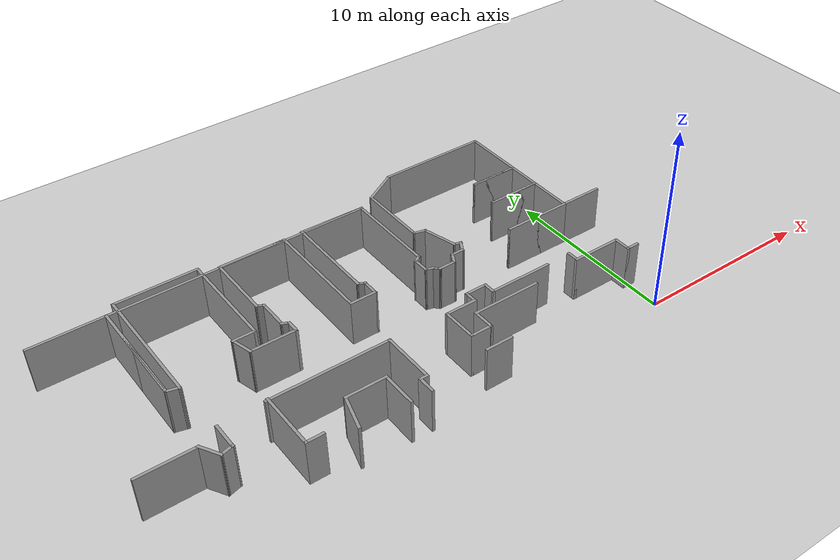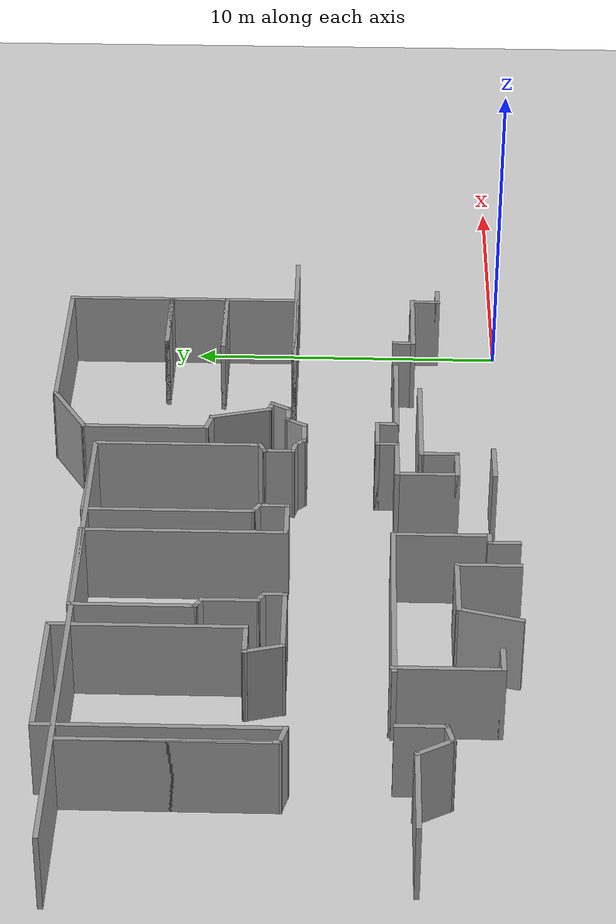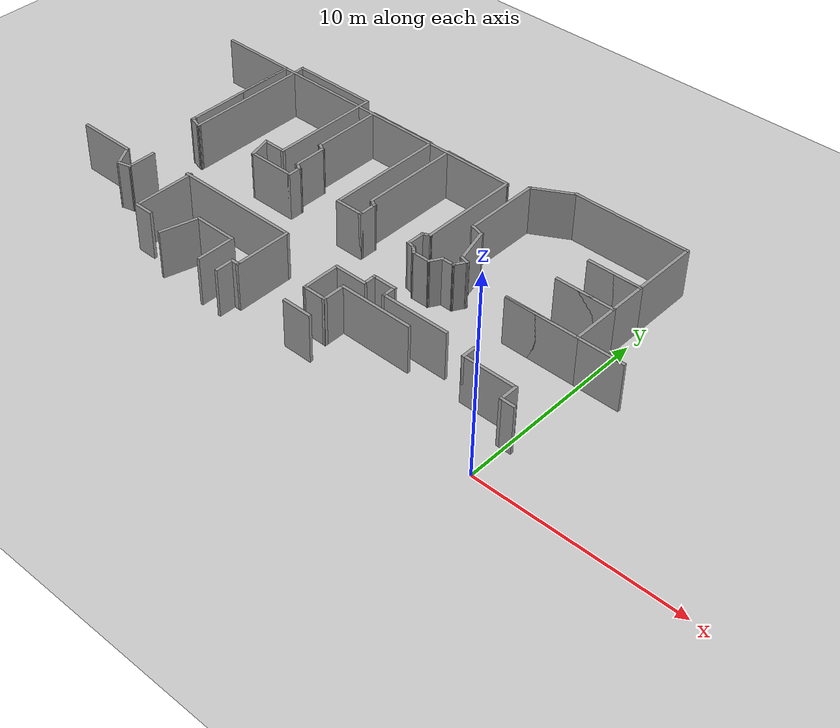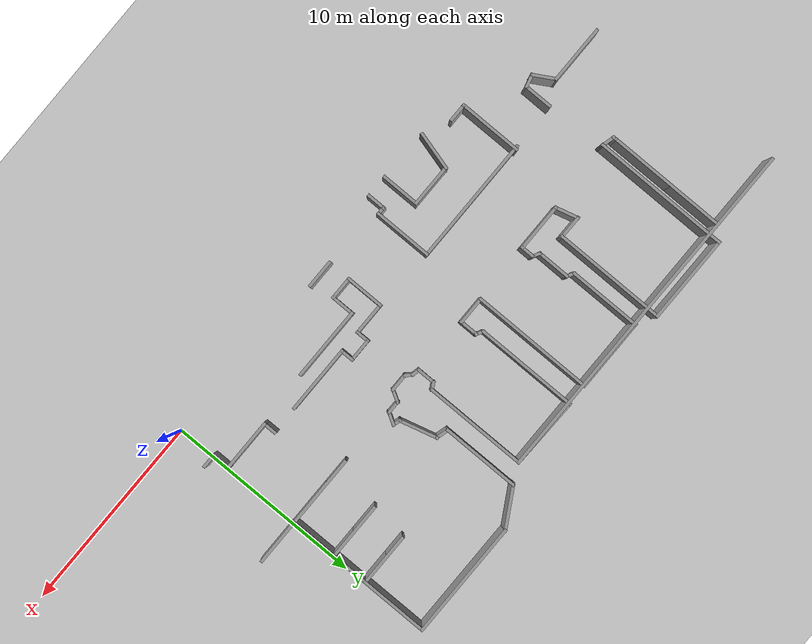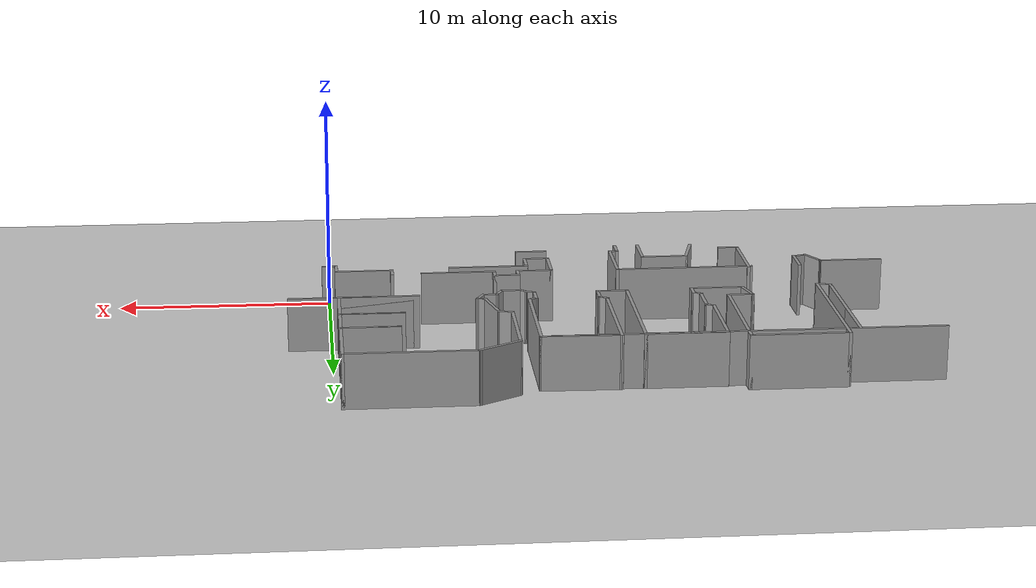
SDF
<sdf version="1.7">
 <world name="default">
  <model name="ground_plane">
   <static>1</static>
   <link name="link">
    <collision name="collision">
     <geometry><plane><normal>0 0 1</normal><size>100 100</size></plane></geometry>
     <surface>
      <contact><collide_bitmask>65535</collide_bitmask></contact>
      <friction><ode><mu>100</mu><mu2>50</mu2></ode></friction>
     </surface>
    </collision>
    <visual name="visual">
     <cast_shadows>0</cast_shadows>
     <geometry><plane><normal>0 0 1</normal><size>100 100</size></plane></geometry>
     <material>
      <script><uri>file://media/materials/scripts/gazebo.material</uri><name>Gazebo/Grey</name></script>
     </material>
    </visual>
   </link>
  </model>
  <model name="Hospital">
   <pose>0.328682 -0.388502 0 0 -0 0</pose>
   <link name="Wall_20">
    <collision name="Wall_20_Collision">
     <geometry><box><size>18 0.15 2.5</size></box></geometry>
     <pose>0 0 1.25 0 -0 0</pose>
    </collision>
    <visual name="Wall_20_Visual">
     <pose>0 0 1.25 0 -0 0</pose>
     <geometry><box><size>18 0.15 2.5</size></box></geometry>
     <material>
      <script><uri>file://media/materials/scripts/gazebo.material</uri><name>Gazebo/Grey</name></script>
      <ambient>1 1 1 1</ambient>
     </material>
     <meta><layer>0</layer></meta>
    </visual>
    <pose>-18.1847 13.131 0 0 -0 0</pose>
   </link>
   <link name="Wall_21">
    <collision name="Wall_21_Collision">
     <geometry><box><size>5.25 0.15 2.5</size></box></geometry>
     <pose>0 0 1.25 0 -0 0</pose>
    </collision>
    <visual name="Wall_21_Visual">
     <pose>0 0 1.25 0 -0 0</pose>
     <geometry><box><size>5.25 0.15 2.5</size></box></geometry>
     <material>
      <script><uri>file://media/materials/scripts/gazebo.material</uri><name>Gazebo/Grey</name></script>
      <ambient>1 1 1 1</ambient>
     </material>
     <meta><layer>0</layer></meta>
    </visual>
    <pose>-9.25971 10.581 0 0 -0 -1.5708</pose>
   </link>
   <link name="Wall_22">
    <collision name="Wall_22_Collision">
     <geometry><box><size>0.5 0.15 2.5</size></box></geometry>
     <pose>0 0 1.25 0 -0 0</pose>
    </collision>
    <visual name="Wall_22_Visual">
     <pose>0 0 1.25 0 -0 0</pose>
     <geometry><box><size>0.5 0.15 2.5</size></box></geometry>
     <material>
      <script><uri>file://media/materials/scripts/gazebo.material</uri><name>Gazebo/Grey</name></script>
      <ambient>1 1 1 1</ambient>
     </material>
     <meta><layer>0</layer></meta>
    </visual>
    <pose>-9.41126 7.94355 0 0 -0 -2.61799</pose>
   </link>
   <link name="Wall_226">
    <collision name="Wall_226_Collision">
     <geometry><box><size>0.75 0.15 2.5</size></box></geometry>
     <pose>0 0 1.25 0 -0 0</pose>
    </collision>
    <visual name="Wall_226_Visual">
     <pose>0 0 1.25 0 -0 0</pose>
     <geometry><box><size>0.75 0.15 2.5</size></box></geometry>
     <material>
      <script><uri>file://media/materials/scripts/gazebo.material</uri><name>Gazebo/Grey</name></script>
      <ambient>1 1 1 1</ambient>
     </material>
     <meta><layer>0</layer></meta>
    </visual>
    <pose>-3.21979 3.50644 0 0 -0 -1.5708</pose>
   </link>
   <link name="Wall_227">
    <collision name="Wall_227_Collision">
     <geometry><box><size>2.75 0.15 2.5</size></box></geometry>
     <pose>0 0 1.25 0 -0 0</pose>
    </collision>
    <visual name="Wall_227_Visual">
     <pose>0 0 1.25 0 -0 0</pose>
     <geometry><box><size>2.75 0.15 2.5</size></box></geometry>
     <material>
      <script><uri>file://media/materials/scripts/gazebo.material</uri><name>Gazebo/Grey</name></script>
      <ambient>1 1 1 1</ambient>
     </material>
     <meta><layer>0</layer></meta>
    </visual>
    <pose>-1.9198 3.20644 0 0 -0 0</pose>
   </link>
   <link name="Wall_228">
    <collision name="Wall_228_Collision">
     <geometry><box><size>1 0.15 2.5</size></box></geometry>
     <pose>0 0 1.25 0 -0 0</pose>
    </collision>
    <visual name="Wall_228_Visual">
     <pose>0 0 1.25 0 -0 0</pose>
     <geometry><box><size>1 0.15 2.5</size></box></geometry>
     <material>
      <script><uri>file://media/materials/scripts/gazebo.material</uri><name>Gazebo/Grey</name></script>
      <ambient>1 1 1 1</ambient>
     </material>
     <meta><layer>0</layer></meta>
    </visual>
    <pose>-0.619796 2.78144 0 0 -0 -1.5708</pose>
   </link>
   <link name="Wall_229">
    <collision name="Wall_229_Collision">
     <geometry><box><size>0.75 0.15 2.5</size></box></geometry>
     <pose>0 0 1.25 0 -0 0</pose>
    </collision>
    <visual name="Wall_229_Visual">
     <pose>0 0 1.25 0 -0 0</pose>
     <geometry><box><size>0.75 0.15 2.5</size></box></geometry>
     <material>
      <script><uri>file://media/materials/scripts/gazebo.material</uri><name>Gazebo/Grey</name></script>
      <ambient>1 1 1 1</ambient>
     </material>
     <meta><layer>0</layer></meta>
    </visual>
    <pose>-0.319796 2.35644 0 0 -0 0</pose>
   </link>
   <link name="Wall_23">
    <collision name="Wall_23_Collision">
     <geometry><box><size>1 0.15 2.5</size></box></geometry>
     <pose>0 0 1.25 0 -0 0</pose>
    </collision>
    <visual name="Wall_23_Visual">
     <pose>0 0 1.25 0 -0 0</pose>
     <geometry><box><size>1 0.15 2.5</size></box></geometry>
     <material>
      <script><uri>file://media/materials/scripts/gazebo.material</uri><name>Gazebo/Grey</name></script>
      <ambient>1 1 1 1</ambient>
     </material>
     <meta><layer>0</layer></meta>
    </visual>
    <pose>-9.56282 7.43105 0 0 -0 -1.5708</pose>
   </link>
   <link name="Wall_24">
    <collision name="Wall_24_Collision">
     <geometry><box><size>0.5 0.15 2.5</size></box></geometry>
     <pose>0 0 1.25 0 -0 0</pose>
    </collision>
    <visual name="Wall_24_Visual">
     <pose>0 0 1.25 0 -0 0</pose>
     <geometry><box><size>0.5 0.15 2.5</size></box></geometry>
     <material>
      <script><uri>file://media/materials/scripts/gazebo.material</uri><name>Gazebo/Grey</name></script>
      <ambient>1 1 1 1</ambient>
     </material>
     <meta><layer>0</layer></meta>
    </visual>
    <pose>-9.39378 6.96075 0 0 -0 -0.261799</pose>
   </link>
   <link name="Wall_243">
    <collision name="Wall_243_Collision">
     <geometry><box><size>3.5 0.15 2.5</size></box></geometry>
     <pose>0 0 1.25 0 -0 0</pose>
    </collision>
    <visual name="Wall_243_Visual">
     <pose>0 0 1.25 0 -0 0</pose>
     <geometry><box><size>3.5 0.15 2.5</size></box></geometry>
     <material>
      <script><uri>file://media/materials/scripts/gazebo.material</uri><name>Gazebo/Grey</name></script>
      <ambient>1 1 1 1</ambient>
     </material>
     <meta><layer>0</layer></meta>
    </visual>
    <pose>-6.31583 3.77644 0 0 -0 3.14159</pose>
   </link>
   <link name="Wall_244">
    <collision name="Wall_244_Collision">
     <geometry><box><size>0.75 0.15 2.5</size></box></geometry>
     <pose>0 0 1.25 0 -0 0</pose>
    </collision>
    <visual name="Wall_244_Visual">
     <pose>0 0 1.25 0 -0 0</pose>
     <geometry><box><size>0.75 0.15 2.5</size></box></geometry>
     <material>
      <script><uri>file://media/materials/scripts/gazebo.material</uri><name>Gazebo/Grey</name></script>
      <ambient>1 1 1 1</ambient>
     </material>
     <meta><layer>0</layer></meta>
    </visual>
    <pose>-7.99083 4.07644 0 0 -0 1.5708</pose>
   </link>
   <link name="Wall_245">
    <collision name="Wall_245_Collision">
     <geometry><box><size>1.25 0.15 2.5</size></box></geometry>
     <pose>0 0 1.25 0 -0 0</pose>
    </collision>
    <visual name="Wall_245_Visual">
     <pose>0 0 1.25 0 -0 0</pose>
     <geometry><box><size>1.25 0.15 2.5</size></box></geometry>
     <material>
      <script><uri>file://media/materials/scripts/gazebo.material</uri><name>Gazebo/Grey</name></script>
      <ambient>1 1 1 1</ambient>
     </material>
     <meta><layer>0</layer></meta>
    </visual>
    <pose>-8.54083 4.37644 0 0 -0 3.14159</pose>
   </link>
   <link name="Wall_246">
    <collision name="Wall_246_Collision">
     <geometry><box><size>0.75 0.15 2.5</size></box></geometry>
     <pose>0 0 1.25 0 -0 0</pose>
    </collision>
    <visual name="Wall_246_Visual">
     <pose>0 0 1.25 0 -0 0</pose>
     <geometry><box><size>0.75 0.15 2.5</size></box></geometry>
     <material>
      <script><uri>file://media/materials/scripts/gazebo.material</uri><name>Gazebo/Grey</name></script>
      <ambient>1 1 1 1</ambient>
     </material>
     <meta><layer>0</layer></meta>
    </visual>
    <pose>-9.09083 4.07644 0 0 -0 -1.5708</pose>
   </link>
   <link name="Wall_247">
    <collision name="Wall_247_Collision">
     <geometry><box><size>1.75 0.15 2.5</size></box></geometry>
     <pose>0 0 1.25 0 -0 0</pose>
    </collision>
    <visual name="Wall_247_Visual">
     <pose>0 0 1.25 0 -0 0</pose>
     <geometry><box><size>1.75 0.15 2.5</size></box></geometry>
     <material>
      <script><uri>file://media/materials/scripts/gazebo.material</uri><name>Gazebo/Grey</name></script>
      <ambient>1 1 1 1</ambient>
     </material>
     <meta><layer>0</layer></meta>
    </visual>
    <pose>-9.89083 3.77644 0 0 -0 3.14159</pose>
   </link>
   <link name="Wall_248">
    <collision name="Wall_248_Collision">
     <geometry><box><size>2 0.15 2.5</size></box></geometry>
     <pose>0 0 1.25 0 -0 0</pose>
    </collision>
    <visual name="Wall_248_Visual">
     <pose>0 0 1.25 0 -0 0</pose>
     <geometry><box><size>2 0.15 2.5</size></box></geometry>
     <material>
      <script><uri>file://media/materials/scripts/gazebo.material</uri><name>Gazebo/Grey</name></script>
      <ambient>1 1 1 1</ambient>
     </material>
     <meta><layer>0</layer></meta>
    </visual>
    <pose>-10.6908 2.85144 0 0 -0 -1.5708</pose>
   </link>
   <link name="Wall_249">
    <collision name="Wall_249_Collision">
     <geometry><box><size>1.25 0.15 2.5</size></box></geometry>
     <pose>0 0 1.25 0 -0 0</pose>
    </collision>
    <visual name="Wall_249_Visual">
     <pose>0 0 1.25 0 -0 0</pose>
     <geometry><box><size>1.25 0.15 2.5</size></box></geometry>
     <material>
      <script><uri>file://media/materials/scripts/gazebo.material</uri><name>Gazebo/Grey</name></script>
      <ambient>1 1 1 1</ambient>
     </material>
     <meta><layer>0</layer></meta>
    </visual>
    <pose>-10.1408 1.92644 0 0 -0 0</pose>
   </link>
   <link name="Wall_25">
    <collision name="Wall_25_Collision">
     <geometry><box><size>0.5 0.15 2.5</size></box></geometry>
     <pose>0 0 1.25 0 -0 0</pose>
    </collision>
    <visual name="Wall_25_Visual">
     <pose>0 0 1.25 0 -0 0</pose>
     <geometry><box><size>0.5 0.15 2.5</size></box></geometry>
     <material>
      <script><uri>file://media/materials/scripts/gazebo.material</uri><name>Gazebo/Grey</name></script>
      <ambient>1 1 1 1</ambient>
     </material>
     <meta><layer>0</layer></meta>
    </visual>
    <pose>-9.101 6.79171 0 0 -0 -0.785398</pose>
   </link>
   <link name="Wall_250">
    <collision name="Wall_250_Collision">
     <geometry><box><size>1.25 0.15 2.5</size></box></geometry>
     <pose>0 0 1.25 0 -0 0</pose>
    </collision>
    <visual name="Wall_250_Visual">
     <pose>0 0 1.25 0 -0 0</pose>
     <geometry><box><size>1.25 0.15 2.5</size></box></geometry>
     <material>
      <script><uri>file://media/materials/scripts/gazebo.material</uri><name>Gazebo/Grey</name></script>
      <ambient>1 1 1 1</ambient>
     </material>
     <meta><layer>0</layer></meta>
    </visual>
    <pose>-9.59083 2.47644 0 0 -0 1.5708</pose>
   </link>
   <link name="Wall_251">
    <collision name="Wall_251_Collision">
     <geometry><box><size>3.75 0.15 2.5</size></box></geometry>
     <pose>0 0 1.25 0 -0 0</pose>
    </collision>
    <visual name="Wall_251_Visual">
     <pose>0 0 1.25 0 -0 0</pose>
     <geometry><box><size>3.75 0.15 2.5</size></box></geometry>
     <material>
      <script><uri>file://media/materials/scripts/gazebo.material</uri><name>Gazebo/Grey</name></script>
      <ambient>1 1 1 1</ambient>
     </material>
     <meta><layer>0</layer></meta>
    </visual>
    <pose>-7.79083 3.02644 0 0 -0 0</pose>
   </link>
   <link name="Wall_26">
    <collision name="Wall_26_Collision">
     <geometry><box><size>1 0.15 2.5</size></box></geometry>
     <pose>0 0 1.25 0 -0 0</pose>
    </collision>
    <visual name="Wall_26_Visual">
     <pose>0 0 1.25 0 -0 0</pose>
     <geometry><box><size>1 0.15 2.5</size></box></geometry>
     <material>
      <script><uri>file://media/materials/scripts/gazebo.material</uri><name>Gazebo/Grey</name></script>
      <ambient>1 1 1 1</ambient>
     </material>
     <meta><layer>0</layer></meta>
    </visual>
    <pose>-8.55226 6.66797 0 0 -0 0</pose>
   </link>
   <link name="Wall_261">
    <collision name="Wall_261_Collision">
     <geometry><box><size>1.5 0.15 2.5</size></box></geometry>
     <pose>0 0 1.25 0 -0 0</pose>
    </collision>
    <visual name="Wall_261_Visual">
     <pose>0 0 1.25 0 -0 0</pose>
     <geometry><box><size>1.5 0.15 2.5</size></box></geometry>
     <material>
      <script><uri>file://media/materials/scripts/gazebo.material</uri><name>Gazebo/Grey</name></script>
      <ambient>1 1 1 1</ambient>
     </material>
     <meta><layer>0</layer></meta>
    </visual>
    <pose>-10.015 0.781732 0 0 -0 3.14159</pose>
   </link>
   <link name="Wall_27">
    <collision name="Wall_27_Collision">
     <geometry><box><size>0.75 0.15 2.5</size></box></geometry>
     <pose>0 0 1.25 0 -0 0</pose>
    </collision>
    <visual name="Wall_27_Visual">
     <pose>0 0 1.25 0 -0 0</pose>
     <geometry><box><size>0.75 0.15 2.5</size></box></geometry>
     <material>
      <script><uri>file://media/materials/scripts/gazebo.material</uri><name>Gazebo/Grey</name></script>
      <ambient>1 1 1 1</ambient>
     </material>
     <meta><layer>0</layer></meta>
    </visual>
    <pose>-7.97726 6.92778 0 0 -0 1.0472</pose>
   </link>
   <link name="Wall_28">
    <collision name="Wall_28_Collision">
     <geometry><box><size>0.75 0.15 2.5</size></box></geometry>
     <pose>0 0 1.25 0 -0 0</pose>
    </collision>
    <visual name="Wall_28_Visual">
     <pose>0 0 1.25 0 -0 0</pose>
     <geometry><box><size>0.75 0.15 2.5</size></box></geometry>
     <material>
      <script><uri>file://media/materials/scripts/gazebo.material</uri><name>Gazebo/Grey</name></script>
      <ambient>1 1 1 1</ambient>
     </material>
     <meta><layer>0</layer></meta>
    </visual>
    <pose>-7.52726 7.18759 0 0 -0 0</pose>
   </link>
   <link name="Wall_29">
    <collision name="Wall_29_Collision">
     <geometry><box><size>0.75 0.15 2.5</size></box></geometry>
     <pose>0 0 1.25 0 -0 0</pose>
    </collision>
    <visual name="Wall_29_Visual">
     <pose>0 0 1.25 0 -0 0</pose>
     <geometry><box><size>0.75 0.15 2.5</size></box></geometry>
     <material>
      <script><uri>file://media/materials/scripts/gazebo.material</uri><name>Gazebo/Grey</name></script>
      <ambient>1 1 1 1</ambient>
     </material>
     <meta><layer>0</layer></meta>
    </visual>
    <pose>-7.07726 7.44739 0 0 -0 1.0472</pose>
   </link>
   <link name="Wall_30">
    <collision name="Wall_30_Collision">
     <geometry><box><size>0.5 0.15 2.5</size></box></geometry>
     <pose>0 0 1.25 0 -0 0</pose>
    </collision>
    <visual name="Wall_30_Visual">
     <pose>0 0 1.25 0 -0 0</pose>
     <geometry><box><size>0.5 0.15 2.5</size></box></geometry>
     <material>
      <script><uri>file://media/materials/scripts/gazebo.material</uri><name>Gazebo/Grey</name></script>
      <ambient>1 1 1 1</ambient>
     </material>
     <meta><layer>0</layer></meta>
    </visual>
    <pose>-7.09629 7.75249 0 0 -0 2.87979</pose>
   </link>
   <link name="Wall_31">
    <collision name="Wall_31_Collision">
     <geometry><box><size>2 0.15 2.5</size></box></geometry>
     <pose>0 0 1.25 0 -0 0</pose>
    </collision>
    <visual name="Wall_31_Visual">
     <pose>0 0 1.25 0 -0 0</pose>
     <geometry><box><size>2 0.15 2.5</size></box></geometry>
     <material>
      <script><uri>file://media/materials/scripts/gazebo.material</uri><name>Gazebo/Grey</name></script>
      <ambient>1 1 1 1</ambient>
     </material>
     <meta><layer>0</layer></meta>
    </visual>
    <pose>-7.50474 8.69127 0 0 -0 1.8326</pose>
   </link>
   <link name="Wall_315">
    <collision name="Wall_315_Collision">
     <geometry><box><size>3 0.15 2.5</size></box></geometry>
     <pose>0 0 1.25 0 -0 0</pose>
    </collision>
    <visual name="Wall_315_Visual">
     <pose>0 0 1.25 0 -0 0</pose>
     <geometry><box><size>3 0.15 2.5</size></box></geometry>
     <material>
      <script><uri>file://media/materials/scripts/gazebo.material</uri><name>Gazebo/Grey</name></script>
      <ambient>1 1 1 1</ambient>
     </material>
     <meta><layer>0</layer></meta>
    </visual>
    <pose>-25.0507 3.31803 0 0 -0 0</pose>
   </link>
   <link name="Wall_316">
    <collision name="Wall_316_Collision">
     <geometry><box><size>1.25 0.15 2.5</size></box></geometry>
     <pose>0 0 1.25 0 -0 0</pose>
    </collision>
    <visual name="Wall_316_Visual">
     <pose>0 0 1.25 0 -0 0</pose>
     <geometry><box><size>1.25 0.15 2.5</size></box></geometry>
     <material>
      <script><uri>file://media/materials/scripts/gazebo.material</uri><name>Gazebo/Grey</name></script>
      <ambient>1 1 1 1</ambient>
     </material>
     <meta><layer>0</layer></meta>
    </visual>
    <pose>-23.3507 2.84172 0 0 -0 -1.0472</pose>
   </link>
   <link name="Wall_317">
    <collision name="Wall_317_Collision">
     <geometry><box><size>0.75 0.15 2.5</size></box></geometry>
     <pose>0 0 1.25 0 -0 0</pose>
    </collision>
    <visual name="Wall_317_Visual">
     <pose>0 0 1.25 0 -0 0</pose>
     <geometry><box><size>0.75 0.15 2.5</size></box></geometry>
     <material>
      <script><uri>file://media/materials/scripts/gazebo.material</uri><name>Gazebo/Grey</name></script>
      <ambient>1 1 1 1</ambient>
     </material>
     <meta><layer>0</layer></meta>
    </visual>
    <pose>-22.7859 2.44305 0 0 -0 0.261799</pose>
   </link>
   <link name="Wall_318">
    <collision name="Wall_318_Collision">
     <geometry><box><size>1.5 0.15 2.5</size></box></geometry>
     <pose>0 0 1.25 0 -0 0</pose>
    </collision>
    <visual name="Wall_318_Visual">
     <pose>0 0 1.25 0 -0 0</pose>
     <geometry><box><size>1.5 0.15 2.5</size></box></geometry>
     <material>
      <script><uri>file://media/materials/scripts/gazebo.material</uri><name>Gazebo/Grey</name></script>
      <ambient>1 1 1 1</ambient>
     </material>
     <meta><layer>0</layer></meta>
    </visual>
    <pose>-22.4961 3.19569 0 0 -0 1.5708</pose>
   </link>
   <link name="Wall_32">
    <collision name="Wall_32_Collision">
     <geometry><box><size>0.75 0.15 2.5</size></box></geometry>
     <pose>0 0 1.25 0 -0 0</pose>
    </collision>
    <visual name="Wall_32_Visual">
     <pose>0 0 1.25 0 -0 0</pose>
     <geometry><box><size>0.75 0.15 2.5</size></box></geometry>
     <material>
      <script><uri>file://media/materials/scripts/gazebo.material</uri><name>Gazebo/Grey</name></script>
      <ambient>1 1 1 1</ambient>
     </material>
     <meta><layer>0</layer></meta>
    </visual>
    <pose>-8.03392 9.6624 0 0 -0 2.87979</pose>
   </link>
   <link name="Wall_33">
    <collision name="Wall_33_Collision">
     <geometry><box><size>4 0.15 2.5</size></box></geometry>
     <pose>0 0 1.25 0 -0 0</pose>
    </collision>
    <visual name="Wall_33_Visual">
     <pose>0 0 1.25 0 -0 0</pose>
     <geometry><box><size>4 0.15 2.5</size></box></geometry>
     <material>
      <script><uri>file://media/materials/scripts/gazebo.material</uri><name>Gazebo/Grey</name></script>
      <ambient>1 1 1 1</ambient>
     </material>
     <meta><layer>0</layer></meta>
    </visual>
    <pose>-8.3237 11.665 0 0 -0 1.5708</pose>
   </link>
   <link name="Wall_34">
    <collision name="Wall_34_Collision">
     <geometry><box><size>2.25 0.15 2.5</size></box></geometry>
     <pose>0 0 1.25 0 -0 0</pose>
    </collision>
    <visual name="Wall_34_Visual">
     <pose>0 0 1.25 0 -0 0</pose>
     <geometry><box><size>2.25 0.15 2.5</size></box></geometry>
     <material>
      <script><uri>file://media/materials/scripts/gazebo.material</uri><name>Gazebo/Grey</name></script>
      <ambient>1 1 1 1</ambient>
     </material>
     <meta><layer>0</layer></meta>
    </visual>
    <pose>-7.41437 14.115 0 0 -0 0.523599</pose>
   </link>
   <link name="Wall_35">
    <collision name="Wall_35_Collision">
     <geometry><box><size>6 0.15 2.5</size></box></geometry>
     <pose>0 0 1.25 0 -0 0</pose>
    </collision>
    <visual name="Wall_35_Visual">
     <pose>0 0 1.25 0 -0 0</pose>
     <geometry><box><size>6 0.15 2.5</size></box></geometry>
     <material>
      <script><uri>file://media/materials/scripts/gazebo.material</uri><name>Gazebo/Grey</name></script>
      <ambient>1 1 1 1</ambient>
     </material>
     <meta><layer>0</layer></meta>
    </visual>
    <pose>-3.58005 14.64 0 0 -0 0</pose>
   </link>
   <link name="Wall_36">
    <collision name="Wall_36_Collision">
     <geometry><box><size>3.5 0.15 2.5</size></box></geometry>
     <pose>0 0 1.25 0 -0 0</pose>
    </collision>
    <visual name="Wall_36_Visual">
     <pose>0 0 1.25 0 -0 0</pose>
     <geometry><box><size>3.5 0.15 2.5</size></box></geometry>
     <material>
      <script><uri>file://media/materials/scripts/gazebo.material</uri><name>Gazebo/Grey</name></script>
      <ambient>1 1 1 1</ambient>
     </material>
     <meta><layer>0</layer></meta>
    </visual>
    <pose>-0.655048 12.965 0 0 -0 -1.5708</pose>
   </link>
   <link name="Wall_37">
    <collision name="Wall_37_Collision">
     <geometry><box><size>2.75 0.15 2.5</size></box></geometry>
     <pose>0 0 1.25 0 -0 0</pose>
    </collision>
    <visual name="Wall_37_Visual">
     <pose>0 0 1.25 0 -0 0</pose>
     <geometry><box><size>2.75 0.15 2.5</size></box></geometry>
     <material>
      <script><uri>file://media/materials/scripts/gazebo.material</uri><name>Gazebo/Grey</name></script>
      <ambient>1 1 1 1</ambient>
     </material>
     <meta><layer>0</layer></meta>
    </visual>
    <pose>-1.95505 11.29 0 0 -0 3.14159</pose>
   </link>
   <link name="Wall_374">
    <collision name="Wall_374_Collision">
     <geometry><box><size>6 0.15 2.5</size></box></geometry>
     <pose>0 0 1.25 0 -0 0</pose>
    </collision>
    <visual name="Wall_374_Visual">
     <pose>0 0 1.25 0 -0 0</pose>
     <geometry><box><size>6 0.15 2.5</size></box></geometry>
     <material>
      <script><uri>file://media/materials/scripts/gazebo.material</uri><name>Gazebo/Grey</name></script>
      <ambient>1 1 1 1</ambient>
     </material>
     <meta><layer>0</layer></meta>
    </visual>
    <pose>-23.2715 10.1794 0 0 -0 1.5708</pose>
   </link>
   <link name="Wall_375">
    <collision name="Wall_375_Collision">
     <geometry><box><size>6.25 0.15 2.5</size></box></geometry>
     <pose>0 0 1.25 0 -0 0</pose>
    </collision>
    <visual name="Wall_375_Visual">
     <pose>0 0 1.25 0 -0 0</pose>
     <geometry><box><size>6.25 0.15 2.5</size></box></geometry>
     <material>
      <script><uri>file://media/materials/scripts/gazebo.material</uri><name>Gazebo/Grey</name></script>
      <ambient>1 1 1 1</ambient>
     </material>
     <meta><layer>0</layer></meta>
    </visual>
    <pose>-23.2715 10.0544 0 0 -0 -1.5708</pose>
   </link>
   <link name="Wall_376">
    <collision name="Wall_376_Collision">
     <geometry><box><size>0.75 0.15 2.5</size></box></geometry>
     <pose>0 0 1.25 0 -0 0</pose>
    </collision>
    <visual name="Wall_376_Visual">
     <pose>0 0 1.25 0 -0 0</pose>
     <geometry><box><size>0.75 0.15 2.5</size></box></geometry>
     <material>
      <script><uri>file://media/materials/scripts/gazebo.material</uri><name>Gazebo/Grey</name></script>
      <ambient>1 1 1 1</ambient>
     </material>
     <meta><layer>0</layer></meta>
    </visual>
    <pose>-22.9818 6.92675 0 0 -0 -0.261799</pose>
   </link>
   <link name="Wall_377">
    <collision name="Wall_377_Collision">
     <geometry><box><size>7 0.15 2.5</size></box></geometry>
     <pose>0 0 1.25 0 -0 0</pose>
    </collision>
    <visual name="Wall_377_Visual">
     <pose>0 0 1.25 0 -0 0</pose>
     <geometry><box><size>7 0.15 2.5</size></box></geometry>
     <material>
      <script><uri>file://media/materials/scripts/gazebo.material</uri><name>Gazebo/Grey</name></script>
      <ambient>1 1 1 1</ambient>
     </material>
     <meta><layer>0</layer></meta>
    </visual>
    <pose>-22.692 10.2741 0 0 -0 1.5708</pose>
   </link>
   <link name="Wall_378">
    <collision name="Wall_378_Collision">
     <geometry><box><size>4.5 0.15 2.5</size></box></geometry>
     <pose>0 0 1.25 0 -0 0</pose>
    </collision>
    <visual name="Wall_378_Visual">
     <pose>0 0 1.25 0 -0 0</pose>
     <geometry><box><size>4.5 0.15 2.5</size></box></geometry>
     <material>
      <script><uri>file://media/materials/scripts/gazebo.material</uri><name>Gazebo/Grey</name></script>
      <ambient>1 1 1 1</ambient>
     </material>
     <meta><layer>0</layer></meta>
    </visual>
    <pose>-20.517 13.6991 0 0 -0 0</pose>
   </link>
   <link name="Wall_379">
    <collision name="Wall_379_Collision">
     <geometry><box><size>5.75 0.15 2.5</size></box></geometry>
     <pose>0 0 1.25 0 -0 0</pose>
    </collision>
    <visual name="Wall_379_Visual">
     <pose>0 0 1.25 0 -0 0</pose>
     <geometry><box><size>5.75 0.15 2.5</size></box></geometry>
     <material>
      <script><uri>file://media/materials/scripts/gazebo.material</uri><name>Gazebo/Grey</name></script>
      <ambient>1 1 1 1</ambient>
     </material>
     <meta><layer>0</layer></meta>
    </visual>
    <pose>-18.342 10.8991 0 0 -0 -1.5708</pose>
   </link>
   <link name="Wall_38">
    <collision name="Wall_38_Collision">
     <geometry><box><size>2.75 0.15 2.5</size></box></geometry>
     <pose>0 0 1.25 0 -0 0</pose>
    </collision>
    <visual name="Wall_38_Visual">
     <pose>0 0 1.25 0 -0 0</pose>
     <geometry><box><size>2.75 0.15 2.5</size></box></geometry>
     <material>
      <script><uri>file://media/materials/scripts/gazebo.material</uri><name>Gazebo/Grey</name></script>
      <ambient>1 1 1 1</ambient>
     </material>
     <meta><layer>0</layer></meta>
    </visual>
    <pose>-1.95505 11.29 0 0 -0 0</pose>
   </link>
   <link name="Wall_380">
    <collision name="Wall_380_Collision">
     <geometry><box><size>1.25 0.15 2.5</size></box></geometry>
     <pose>0 0 1.25 0 -0 0</pose>
    </collision>
    <visual name="Wall_380_Visual">
     <pose>0 0 1.25 0 -0 0</pose>
     <geometry><box><size>1.25 0.15 2.5</size></box></geometry>
     <material>
      <script><uri>file://media/materials/scripts/gazebo.material</uri><name>Gazebo/Grey</name></script>
      <ambient>1 1 1 1</ambient>
     </material>
     <meta><layer>0</layer></meta>
    </visual>
    <pose>-18.892 8.09911 0 0 -0 3.14159</pose>
   </link>
   <link name="Wall_381">
    <collision name="Wall_381_Collision">
     <geometry><box><size>1.25 0.15 2.5</size></box></geometry>
     <pose>0 0 1.25 0 -0 0</pose>
    </collision>
    <visual name="Wall_381_Visual">
     <pose>0 0 1.25 0 -0 0</pose>
     <geometry><box><size>1.25 0.15 2.5</size></box></geometry>
     <material>
      <script><uri>file://media/materials/scripts/gazebo.material</uri><name>Gazebo/Grey</name></script>
      <ambient>1 1 1 1</ambient>
     </material>
     <meta><layer>0</layer></meta>
    </visual>
    <pose>-19.2996 7.56785 0 0 -0 -1.309</pose>
   </link>
   <link name="Wall_382">
    <collision name="Wall_382_Collision">
     <geometry><box><size>2.5 0.15 2.5</size></box></geometry>
     <pose>0 0 1.25 0 -0 0</pose>
    </collision>
    <visual name="Wall_382_Visual">
     <pose>0 0 1.25 0 -0 0</pose>
     <geometry><box><size>2.5 0.15 2.5</size></box></geometry>
     <material>
      <script><uri>file://media/materials/scripts/gazebo.material</uri><name>Gazebo/Grey</name></script>
      <ambient>1 1 1 1</ambient>
     </material>
     <meta><layer>0</layer></meta>
    </visual>
    <pose>-17.9823 7.03659 0 0 -0 0</pose>
   </link>
   <link name="Wall_383">
    <collision name="Wall_383_Collision">
     <geometry><box><size>0.75 0.15 2.5</size></box></geometry>
     <pose>0 0 1.25 0 -0 0</pose>
    </collision>
    <visual name="Wall_383_Visual">
     <pose>0 0 1.25 0 -0 0</pose>
     <geometry><box><size>0.75 0.15 2.5</size></box></geometry>
     <material>
      <script><uri>file://media/materials/scripts/gazebo.material</uri><name>Gazebo/Grey</name></script>
      <ambient>1 1 1 1</ambient>
     </material>
     <meta><layer>0</layer></meta>
    </visual>
    <pose>-16.8073 7.33659 0 0 -0 1.5708</pose>
   </link>
   <link name="Wall_384">
    <collision name="Wall_384_Collision">
     <geometry><box><size>0.5 0.15 2.5</size></box></geometry>
     <pose>0 0 1.25 0 -0 0</pose>
    </collision>
    <visual name="Wall_384_Visual">
     <pose>0 0 1.25 0 -0 0</pose>
     <geometry><box><size>0.5 0.15 2.5</size></box></geometry>
     <material>
      <script><uri>file://media/materials/scripts/gazebo.material</uri><name>Gazebo/Grey</name></script>
      <ambient>1 1 1 1</ambient>
     </material>
     <meta><layer>0</layer></meta>
    </visual>
    <pose>-16.9588 7.72409 0 0 -0 2.61799</pose>
   </link>
   <link name="Wall_385">
    <collision name="Wall_385_Collision">
     <geometry><box><size>1.75 0.15 2.5</size></box></geometry>
     <pose>0 0 1.25 0 -0 0</pose>
    </collision>
    <visual name="Wall_385_Visual">
     <pose>0 0 1.25 0 -0 0</pose>
     <geometry><box><size>1.75 0.15 2.5</size></box></geometry>
     <material>
      <script><uri>file://media/materials/scripts/gazebo.material</uri><name>Gazebo/Grey</name></script>
      <ambient>1 1 1 1</ambient>
     </material>
     <meta><layer>0</layer></meta>
    </visual>
    <pose>-17.1104 8.61159 0 0 -0 1.5708</pose>
   </link>
   <link name="Wall_386">
    <collision name="Wall_386_Collision">
     <geometry><box><size>0.5 0.15 2.5</size></box></geometry>
     <pose>0 0 1.25 0 -0 0</pose>
    </collision>
    <visual name="Wall_386_Visual">
     <pose>0 0 1.25 0 -0 0</pose>
     <geometry><box><size>0.5 0.15 2.5</size></box></geometry>
     <material>
      <script><uri>file://media/materials/scripts/gazebo.material</uri><name>Gazebo/Grey</name></script>
      <ambient>1 1 1 1</ambient>
     </material>
     <meta><layer>0</layer></meta>
    </visual>
    <pose>-17.2619 9.49909 0 0 -0 2.61799</pose>
   </link>
   <link name="Wall_387">
    <collision name="Wall_387_Collision">
     <geometry><box><size>3.75 0.15 2.5</size></box></geometry>
     <pose>0 0 1.25 0 -0 0</pose>
    </collision>
    <visual name="Wall_387_Visual">
     <pose>0 0 1.25 0 -0 0</pose>
     <geometry><box><size>3.75 0.15 2.5</size></box></geometry>
     <material>
      <script><uri>file://media/materials/scripts/gazebo.material</uri><name>Gazebo/Grey</name></script>
      <ambient>1 1 1 1</ambient>
     </material>
     <meta><layer>0</layer></meta>
    </visual>
    <pose>-17.4135 11.3866 0 0 -0 1.5708</pose>
   </link>
   <link name="Wall_388">
    <collision name="Wall_388_Collision">
     <geometry><box><size>3.75 0.15 2.5</size></box></geometry>
     <pose>0 0 1.25 0 -0 0</pose>
    </collision>
    <visual name="Wall_388_Visual">
     <pose>0 0 1.25 0 -0 0</pose>
     <geometry><box><size>3.75 0.15 2.5</size></box></geometry>
     <material>
      <script><uri>file://media/materials/scripts/gazebo.material</uri><name>Gazebo/Grey</name></script>
      <ambient>1 1 1 1</ambient>
     </material>
     <meta><layer>0</layer></meta>
    </visual>
    <pose>-15.6135 13.1866 0 0 -0 0</pose>
   </link>
   <link name="Wall_389">
    <collision name="Wall_389_Collision">
     <geometry><box><size>6.25 0.15 2.5</size></box></geometry>
     <pose>0 0 1.25 0 -0 0</pose>
    </collision>
    <visual name="Wall_389_Visual">
     <pose>0 0 1.25 0 -0 0</pose>
     <geometry><box><size>6.25 0.15 2.5</size></box></geometry>
     <material>
      <script><uri>file://media/materials/scripts/gazebo.material</uri><name>Gazebo/Grey</name></script>
      <ambient>1 1 1 1</ambient>
     </material>
     <meta><layer>0</layer></meta>
    </visual>
    <pose>-13.8135 10.1366 0 0 -0 -1.5708</pose>
   </link>
   <link name="Wall_39">
    <collision name="Wall_39_Collision">
     <geometry><box><size>2 0.15 2.5</size></box></geometry>
     <pose>0 0 1.25 0 -0 0</pose>
    </collision>
    <visual name="Wall_39_Visual">
     <pose>0 0 1.25 0 -0 0</pose>
     <geometry><box><size>2 0.15 2.5</size></box></geometry>
     <material>
      <script><uri>file://media/materials/scripts/gazebo.material</uri><name>Gazebo/Grey</name></script>
      <ambient>1 1 1 1</ambient>
     </material>
     <meta><layer>0</layer></meta>
    </visual>
    <pose>-0.655048 10.365 0 0 -0 -1.5708</pose>
   </link>
   <link name="Wall_390">
    <collision name="Wall_390_Collision">
     <geometry><box><size>1.5 0.15 2.5</size></box></geometry>
     <pose>0 0 1.25 0 -0 0</pose>
    </collision>
    <visual name="Wall_390_Visual">
     <pose>0 0 1.25 0 -0 0</pose>
     <geometry><box><size>1.5 0.15 2.5</size></box></geometry>
     <material>
      <script><uri>file://media/materials/scripts/gazebo.material</uri><name>Gazebo/Grey</name></script>
      <ambient>1 1 1 1</ambient>
     </material>
     <meta><layer>0</layer></meta>
    </visual>
    <pose>-13.1385 7.08659 0 0 -0 0</pose>
   </link>
   <link name="Wall_391">
    <collision name="Wall_391_Collision">
     <geometry><box><size>1 0.15 2.5</size></box></geometry>
     <pose>0 0 1.25 0 -0 0</pose>
    </collision>
    <visual name="Wall_391_Visual">
     <pose>0 0 1.25 0 -0 0</pose>
     <geometry><box><size>1 0.15 2.5</size></box></geometry>
     <material>
      <script><uri>file://media/materials/scripts/gazebo.material</uri><name>Gazebo/Grey</name></script>
      <ambient>1 1 1 1</ambient>
     </material>
     <meta><layer>0</layer></meta>
    </visual>
    <pose>-12.4635 7.51159 0 0 -0 1.5708</pose>
   </link>
   <link name="Wall_392">
    <collision name="Wall_392_Collision">
     <geometry><box><size>0.5 0.15 2.5</size></box></geometry>
     <pose>0 0 1.25 0 -0 0</pose>
    </collision>
    <visual name="Wall_392_Visual">
     <pose>0 0 1.25 0 -0 0</pose>
     <geometry><box><size>0.5 0.15 2.5</size></box></geometry>
     <material>
      <script><uri>file://media/materials/scripts/gazebo.material</uri><name>Gazebo/Grey</name></script>
      <ambient>1 1 1 1</ambient>
     </material>
     <meta><layer>0</layer></meta>
    </visual>
    <pose>-12.6151 8.02409 0 0 -0 2.61799</pose>
   </link>
   <link name="Wall_393">
    <collision name="Wall_393_Collision">
     <geometry><box><size>5.25 0.15 2.5</size></box></geometry>
     <pose>0 0 1.25 0 -0 0</pose>
    </collision>
    <visual name="Wall_393_Visual">
     <pose>0 0 1.25 0 -0 0</pose>
     <geometry><box><size>5.25 0.15 2.5</size></box></geometry>
     <material>
      <script><uri>file://media/materials/scripts/gazebo.material</uri><name>Gazebo/Grey</name></script>
      <ambient>1 1 1 1</ambient>
     </material>
     <meta><layer>0</layer></meta>
    </visual>
    <pose>-12.7666 10.6616 0 0 -0 1.5708</pose>
   </link>
   <link name="Wall_394">
    <collision name="Wall_394_Collision">
     <geometry><box><size>3.65782 0.15 2.5</size></box></geometry>
     <pose>0 0 1.25 0 -0 0</pose>
    </collision>
    <visual name="Wall_394_Visual">
     <pose>0 0 1.25 0 -0 0</pose>
     <geometry><box><size>3.65782 0.15 2.5</size></box></geometry>
     <material>
      <script><uri>file://media/materials/scripts/gazebo.material</uri><name>Gazebo/Grey</name></script>
      <ambient>1 1 1 1</ambient>
     </material>
     <meta><layer>0</layer></meta>
    </visual>
    <pose>-11.0132 13.1713 0 0 -0 -0.022963</pose>
   </link>
   <link name="Wall_396">
    <collision name="Wall_396_Collision">
     <geometry><box><size>3.25 0.15 2.5</size></box></geometry>
     <pose>0 0 1.25 0 -0 0</pose>
    </collision>
    <visual name="Wall_396_Visual">
     <pose>0 0 1.25 0 -0 0</pose>
     <geometry><box><size>3.25 0.15 2.5</size></box></geometry>
     <material>
      <script><uri>file://media/materials/scripts/gazebo.material</uri><name>Gazebo/Grey</name></script>
      <ambient>1 1 1 1</ambient>
     </material>
     <meta><layer>0</layer></meta>
    </visual>
    <pose>-20.0351 2.4275 0 0 -0 -1.5708</pose>
   </link>
   <link name="Wall_397">
    <collision name="Wall_397_Collision">
     <geometry><box><size>1 0.15 2.5</size></box></geometry>
     <pose>0 0 1.25 0 -0 0</pose>
    </collision>
    <visual name="Wall_397_Visual">
     <pose>0 0 1.25 0 -0 0</pose>
     <geometry><box><size>1 0.15 2.5</size></box></geometry>
     <material>
      <script><uri>file://media/materials/scripts/gazebo.material</uri><name>Gazebo/Grey</name></script>
      <ambient>1 1 1 1</ambient>
     </material>
     <meta><layer>0</layer></meta>
    </visual>
    <pose>-19.6101 0.877496 0 0 -0 0</pose>
   </link>
   <link name="Wall_40">
    <collision name="Wall_40_Collision">
     <geometry><box><size>3 0.15 2.5</size></box></geometry>
     <pose>0 0 1.25 0 -0 0</pose>
    </collision>
    <visual name="Wall_40_Visual">
     <pose>0 0 1.25 0 -0 0</pose>
     <geometry><box><size>3 0.15 2.5</size></box></geometry>
     <material>
      <script><uri>file://media/materials/scripts/gazebo.material</uri><name>Gazebo/Grey</name></script>
      <ambient>1 1 1 1</ambient>
     </material>
     <meta><layer>0</layer></meta>
    </visual>
    <pose>-2.08005 9.44004 0 0 -0 3.14159</pose>
   </link>
   <link name="Wall_400">
    <collision name="Wall_400_Collision">
     <geometry><box><size>2 0.15 2.5</size></box></geometry>
     <pose>0 0 1.25 0 -0 0</pose>
    </collision>
    <visual name="Wall_400_Visual">
     <pose>0 0 1.25 0 -0 0</pose>
     <geometry><box><size>2 0.15 2.5</size></box></geometry>
     <material>
      <script><uri>file://media/materials/scripts/gazebo.material</uri><name>Gazebo/Grey</name></script>
      <ambient>1 1 1 1</ambient>
     </material>
     <meta><layer>0</layer></meta>
    </visual>
    <pose>-17.5957 1.17098 0 0 -0 1.309</pose>
   </link>
   <link name="Wall_401">
    <collision name="Wall_401_Collision">
     <geometry><box><size>2.25 0.15 2.5</size></box></geometry>
     <pose>0 0 1.25 0 -0 0</pose>
    </collision>
    <visual name="Wall_401_Visual">
     <pose>0 0 1.25 0 -0 0</pose>
     <geometry><box><size>2.25 0.15 2.5</size></box></geometry>
     <material>
      <script><uri>file://media/materials/scripts/gazebo.material</uri><name>Gazebo/Grey</name></script>
      <ambient>1 1 1 1</ambient>
     </material>
     <meta><layer>0</layer></meta>
    </visual>
    <pose>-16.3063 2.06446 0 0 -0 0</pose>
   </link>
   <link name="Wall_402">
    <collision name="Wall_402_Collision">
     <geometry><box><size>2 0.15 2.5</size></box></geometry>
     <pose>0 0 1.25 0 -0 0</pose>
    </collision>
    <visual name="Wall_402_Visual">
     <pose>0 0 1.25 0 -0 0</pose>
     <geometry><box><size>2 0.15 2.5</size></box></geometry>
     <material>
      <script><uri>file://media/materials/scripts/gazebo.material</uri><name>Gazebo/Grey</name></script>
      <ambient>1 1 1 1</ambient>
     </material>
     <meta><layer>0</layer></meta>
    </visual>
    <pose>-15.2563 1.13946 0 0 -0 -1.5708</pose>
   </link>
   <link name="Wall_404">
    <collision name="Wall_404_Collision">
     <geometry><box><size>1 0.15 2.5</size></box></geometry>
     <pose>0 0 1.25 0 -0 0</pose>
    </collision>
    <visual name="Wall_404_Visual">
     <pose>0 0 1.25 0 -0 0</pose>
     <geometry><box><size>1 0.15 2.5</size></box></geometry>
     <material>
      <script><uri>file://media/materials/scripts/gazebo.material</uri><name>Gazebo/Grey</name></script>
      <ambient>1 1 1 1</ambient>
     </material>
     <meta><layer>0</layer></meta>
    </visual>
    <pose>-14.1563 0.639459 0 0 -0 1.5708</pose>
   </link>
   <link name="Wall_405">
    <collision name="Wall_405_Collision">
     <geometry><box><size>0.5 0.15 2.5</size></box></geometry>
     <pose>0 0 1.25 0 -0 0</pose>
    </collision>
    <visual name="Wall_405_Visual">
     <pose>0 0 1.25 0 -0 0</pose>
     <geometry><box><size>0.5 0.15 2.5</size></box></geometry>
     <material>
      <script><uri>file://media/materials/scripts/gazebo.material</uri><name>Gazebo/Grey</name></script>
      <ambient>1 1 1 1</ambient>
     </material>
     <meta><layer>0</layer></meta>
    </visual>
    <pose>-13.9813 1.06446 0 0 -0 0</pose>
   </link>
   <link name="Wall_406">
    <collision name="Wall_406_Collision">
     <geometry><box><size>3 0.15 2.5</size></box></geometry>
     <pose>0 0 1.25 0 -0 0</pose>
    </collision>
    <visual name="Wall_406_Visual">
     <pose>0 0 1.25 0 -0 0</pose>
     <geometry><box><size>3 0.15 2.5</size></box></geometry>
     <material>
      <script><uri>file://media/materials/scripts/gazebo.material</uri><name>Gazebo/Grey</name></script>
      <ambient>1 1 1 1</ambient>
     </material>
     <meta><layer>0</layer></meta>
    </visual>
    <pose>-13.8063 2.48946 0 0 -0 1.5708</pose>
   </link>
   <link name="Wall_407">
    <collision name="Wall_407_Collision">
     <geometry><box><size>6.5 0.15 2.5</size></box></geometry>
     <pose>0 0 1.25 0 -0 0</pose>
    </collision>
    <visual name="Wall_407_Visual">
     <pose>0 0 1.25 0 -0 0</pose>
     <geometry><box><size>6.5 0.15 2.5</size></box></geometry>
     <material>
      <script><uri>file://media/materials/scripts/gazebo.material</uri><name>Gazebo/Grey</name></script>
      <ambient>1 1 1 1</ambient>
     </material>
     <meta><layer>0</layer></meta>
    </visual>
    <pose>-16.9813 3.91446 0 0 -0 3.14159</pose>
   </link>
   <link name="Wall_41">
    <collision name="Wall_41_Collision">
     <geometry><box><size>3 0.15 2.5</size></box></geometry>
     <pose>0 0 1.25 0 -0 0</pose>
    </collision>
    <visual name="Wall_41_Visual">
     <pose>0 0 1.25 0 -0 0</pose>
     <geometry><box><size>3 0.15 2.5</size></box></geometry>
     <material>
      <script><uri>file://media/materials/scripts/gazebo.material</uri><name>Gazebo/Grey</name></script>
      <ambient>1 1 1 1</ambient>
     </material>
     <meta><layer>0</layer></meta>
    </visual>
    <pose>-2.08005 9.44004 0 0 -0 0</pose>
   </link>
   <link name="Wall_42">
    <collision name="Wall_42_Collision">
     <geometry><box><size>2.5 0.15 2.5</size></box></geometry>
     <pose>0 0 1.25 0 -0 0</pose>
    </collision>
    <visual name="Wall_42_Visual">
     <pose>0 0 1.25 0 -0 0</pose>
     <geometry><box><size>2.5 0.15 2.5</size></box></geometry>
     <material>
      <script><uri>file://media/materials/scripts/gazebo.material</uri><name>Gazebo/Grey</name></script>
      <ambient>1 1 1 1</ambient>
     </material>
     <meta><layer>0</layer></meta>
    </visual>
    <pose>-0.655048 8.26504 0 0 -0 -1.5708</pose>
   </link>
   <link name="Wall_43">
    <collision name="Wall_43_Collision">
     <geometry><box><size>3.75 0.15 2.5</size></box></geometry>
     <pose>0 0 1.25 0 -0 0</pose>
    </collision>
    <visual name="Wall_43_Visual">
     <pose>0 0 1.25 0 -0 0</pose>
     <geometry><box><size>3.75 0.15 2.5</size></box></geometry>
     <material>
      <script><uri>file://media/materials/scripts/gazebo.material</uri><name>Gazebo/Grey</name></script>
      <ambient>1 1 1 1</ambient>
     </material>
     <meta><layer>0</layer></meta>
    </visual>
    <pose>-2.45505 7.09004 0 0 -0 3.14159</pose>
   </link>
   <link name="Wall_44">
    <collision name="Wall_44_Collision">
     <geometry><box><size>6 0.15 2.5</size></box></geometry>
     <pose>0 0 1.25 0 -0 0</pose>
    </collision>
    <visual name="Wall_44_Visual">
     <pose>0 0 1.25 0 -0 0</pose>
     <geometry><box><size>6 0.15 2.5</size></box></geometry>
     <material>
      <script><uri>file://media/materials/scripts/gazebo.material</uri><name>Gazebo/Grey</name></script>
      <ambient>1 1 1 1</ambient>
     </material>
     <meta><layer>0</layer></meta>
    </visual>
    <pose>-1.33005 7.09004 0 0 -0 0</pose>
   </link>
   <static>1</static>
  </model>
 </world>
</sdf>
